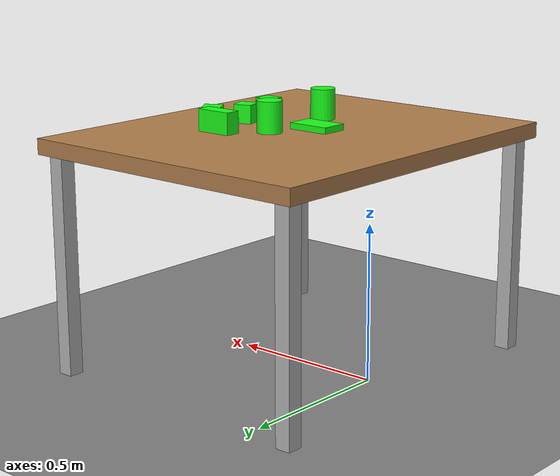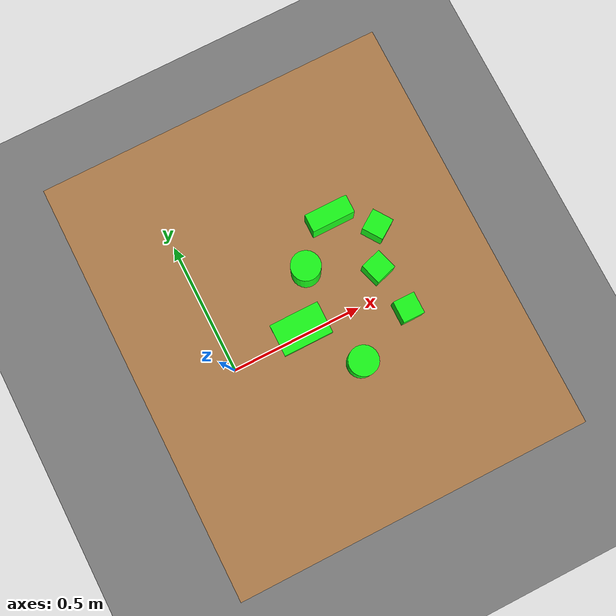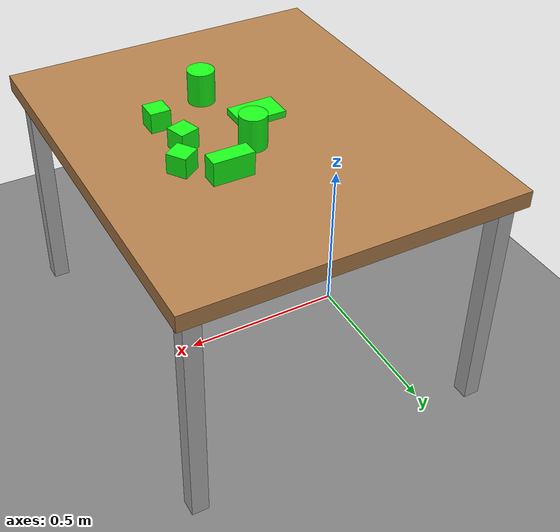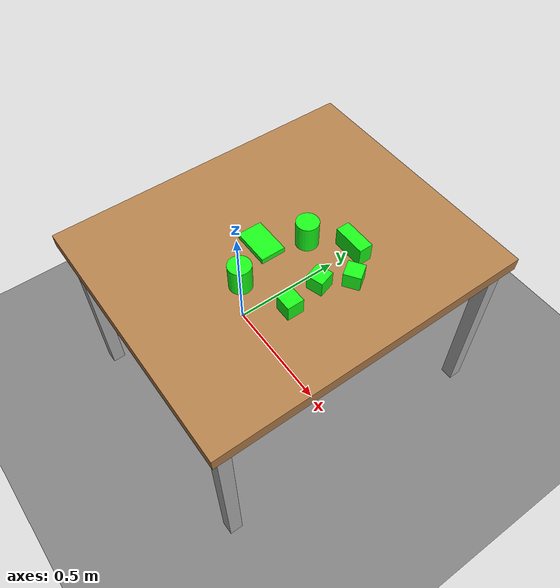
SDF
<?xml version="1.0" ?>
<sdf version="1.6">
  <world name="arm_table_world">

    <model name="ground_plane">
      <static>true</static>
      <link name="link">
        <collision name="collision">
          <geometry><plane><normal>0 0 1</normal><size>20 20</size></plane></geometry>
        </collision>
        <visual name="visual">
          <geometry><plane><normal>0 0 1</normal><size>20 20</size></plane></geometry>
          <material><ambient>0.4 0.4 0.4 1</ambient><diffuse>0.5 0.5 0.5 1</diffuse></material>
        </visual>
      </link>
    </model>

    <!-- Освещение: рассеянный свет сцены (тени светлее), яркое солнце и
         заполняющий источник с другой стороны без теней -->
    <scene>
      <ambient>0.6 0.6 0.6 1</ambient>
      <background>0.75 0.8 0.85 1</background>
      <shadows>true</shadows>
    </scene>

    <light type="directional" name="sun">
      <cast_shadows>true</cast_shadows>
      <pose>0 0 10 0 0 0</pose>
      <diffuse>1.0 1.0 1.0 1</diffuse>
      <specular>0.3 0.3 0.3 1</specular>
      <direction>-0.5 0.1 -0.9</direction>
    </light>

    <light type="directional" name="fill">
      <cast_shadows>false</cast_shadows>
      <pose>0 0 10 0 0 0</pose>
      <diffuse>0.5 0.5 0.5 1</diffuse>
      <specular>0.1 0.1 0.1 1</specular>
      <direction>0.6 -0.3 -0.7</direction>
    </light>

    <!-- Стол: столешница 1.0 x 1.2 x 0.05, центр x=0.3 (край x -0.2..0.8),
         верх z = 0.75; 4 ножки до низа столешницы (z 0.725) -->
    <model name="table">
      <static>true</static>
      <pose>0.3 0 0 0 0 0</pose>
      <link name="link">
        <visual name="top_visual">
          <pose>0 0 0.725 0 0 0</pose>
          <geometry><box><size>1.0 1.2 0.05</size></box></geometry>
          <material><ambient>0.6 0.4 0.2 1</ambient><diffuse>0.7 0.5 0.3 1</diffuse></material>
        </visual>
        <collision name="top_collision">
          <pose>0 0 0.725 0 0 0</pose>
          <geometry><box><size>1.0 1.2 0.05</size></box></geometry>
          <surface><friction><ode><mu>1.0</mu><mu2>1.0</mu2></ode></friction></surface>
        </collision>
        <visual name="leg1"><pose>0.45 0.55 0.35 0 0 0</pose>
          <geometry><box><size>0.05 0.05 0.7</size></box></geometry></visual>
        <visual name="leg2"><pose>0.45 -0.55 0.35 0 0 0</pose>
          <geometry><box><size>0.05 0.05 0.7</size></box></geometry></visual>
        <visual name="leg3"><pose>-0.45 0.55 0.35 0 0 0</pose>
          <geometry><box><size>0.05 0.05 0.7</size></box></geometry></visual>
        <visual name="leg4"><pose>-0.45 -0.55 0.35 0 0 0</pose>
          <geometry><box><size>0.05 0.05 0.7</size></box></geometry></visual>
      </link>
    </model>

    <!-- OBJECTS BEGIN — СГЕНЕРИРОВАНО tools/gen_arm_table_scene.py из config/arm_table_objects.yaml, не править руками -->
    <model name="cube">
      <pose>0.5 0.0 0.7805 0 0 0.3</pose>
      <plugin filename="gz-sim-pose-publisher-system" name="gz::sim::systems::PosePublisher">
        <publish_model_pose>true</publish_model_pose>
        <publish_link_pose>false</publish_link_pose>
        <publish_collision_pose>false</publish_collision_pose>
        <publish_visual_pose>false</publish_visual_pose>
        <publish_sensor_pose>false</publish_sensor_pose>
        <use_pose_vector_msg>true</use_pose_vector_msg>
        <update_frequency>10</update_frequency>
      </plugin>
      <link name="link">
        <inertial>
          <mass>0.1</mass>
          <inertia>
            <ixx>6.000e-05</ixx><iyy>6.000e-05</iyy><izz>6.000e-05</izz>
            <ixy>0</ixy><ixz>0</ixz><iyz>0</iyz>
          </inertia>
        </inertial>
        <visual name="visual">
          <geometry><box><size>0.06 0.06 0.06</size></box></geometry>
          <material><ambient>0.1 1.0 0.1 1</ambient><diffuse>0.1 1.0 0.1 1</diffuse><emissive>0.0 0.35 0.0 1</emissive></material>
        </visual>
        <collision name="collision">
          <geometry><box><size>0.06 0.06 0.06</size></box></geometry>
          <surface><friction><ode><mu>1.0</mu><mu2>1.0</mu2></ode></friction></surface>
        </collision>
      </link>
    </model>
    <model name="parallelepiped">
      <pose>0.45 0.18 0.7855 0 0 0.0</pose>
      <plugin filename="gz-sim-pose-publisher-system" name="gz::sim::systems::PosePublisher">
        <publish_model_pose>true</publish_model_pose>
        <publish_link_pose>false</publish_link_pose>
        <publish_collision_pose>false</publish_collision_pose>
        <publish_visual_pose>false</publish_visual_pose>
        <publish_sensor_pose>false</publish_sensor_pose>
        <use_pose_vector_msg>true</use_pose_vector_msg>
        <update_frequency>10</update_frequency>
      </plugin>
      <link name="link">
        <inertial>
          <mass>0.15</mass>
          <inertia>
            <ixx>9.250e-05</ixx><iyy>2.413e-04</iyy><izz>2.112e-04</izz>
            <ixy>0</ixy><ixz>0</ixz><iyz>0</iyz>
          </inertia>
        </inertial>
        <visual name="visual">
          <geometry><box><size>0.12 0.05 0.07</size></box></geometry>
          <material><ambient>0.1 1.0 0.1 1</ambient><diffuse>0.1 1.0 0.1 1</diffuse><emissive>0.0 0.35 0.0 1</emissive></material>
        </visual>
        <collision name="collision">
          <geometry><box><size>0.12 0.05 0.07</size></box></geometry>
          <surface><friction><ode><mu>1.0</mu><mu2>1.0</mu2></ode></friction></surface>
        </collision>
      </link>
    </model>
    <model name="rect_plate">
      <pose>0.25 -0.05 0.7605 0 0 0.0</pose>
      <plugin filename="gz-sim-pose-publisher-system" name="gz::sim::systems::PosePublisher">
        <publish_model_pose>true</publish_model_pose>
        <publish_link_pose>false</publish_link_pose>
        <publish_collision_pose>false</publish_collision_pose>
        <publish_visual_pose>false</publish_visual_pose>
        <publish_sensor_pose>false</publish_sensor_pose>
        <use_pose_vector_msg>true</use_pose_vector_msg>
        <update_frequency>10</update_frequency>
      </plugin>
      <link name="link">
        <inertial>
          <mass>0.12</mass>
          <inertia>
            <ixx>8.500e-05</ixx><iyy>2.000e-04</iyy><izz>2.770e-04</izz>
            <ixy>0</ixy><ixz>0</ixz><iyz>0</iyz>
          </inertia>
        </inertial>
        <visual name="visual">
          <geometry><box><size>0.14 0.09 0.02</size></box></geometry>
          <material><ambient>0.1 1.0 0.1 1</ambient><diffuse>0.1 1.0 0.1 1</diffuse><emissive>0.0 0.35 0.0 1</emissive></material>
        </visual>
        <collision name="collision">
          <geometry><box><size>0.14 0.09 0.02</size></box></geometry>
          <surface><friction><ode><mu>1.0</mu><mu2>1.0</mu2></ode></friction></surface>
        </collision>
      </link>
    </model>
    <model name="cylinder">
      <pose>0.35 -0.2 0.8005 0 0 0.0</pose>
      <plugin filename="gz-sim-pose-publisher-system" name="gz::sim::systems::PosePublisher">
        <publish_model_pose>true</publish_model_pose>
        <publish_link_pose>false</publish_link_pose>
        <publish_collision_pose>false</publish_collision_pose>
        <publish_visual_pose>false</publish_visual_pose>
        <publish_sensor_pose>false</publish_sensor_pose>
        <use_pose_vector_msg>true</use_pose_vector_msg>
        <update_frequency>10</update_frequency>
      </plugin>
      <link name="link">
        <inertial>
          <mass>0.12</mass>
          <inertia>
            <ixx>1.480e-04</ixx><iyy>1.480e-04</iyy><izz>9.600e-05</izz>
            <ixy>0</ixy><ixz>0</ixz><iyz>0</iyz>
          </inertia>
        </inertial>
        <visual name="visual">
          <geometry><cylinder><radius>0.04</radius><length>0.1</length></cylinder></geometry>
          <material><ambient>0.1 1.0 0.1 1</ambient><diffuse>0.1 1.0 0.1 1</diffuse><emissive>0.0 0.35 0.0 1</emissive></material>
        </visual>
        <collision name="collision">
          <geometry><cylinder><radius>0.04</radius><length>0.1</length></cylinder></geometry>
          <surface><friction><ode><mu>1.0</mu><mu2>1.0</mu2></ode></friction></surface>
        </collision>
      </link>
    </model>
    <model name="cube_2">
      <pose>0.52 -0.13 0.7805 0 0 0.0</pose>
      <plugin filename="gz-sim-pose-publisher-system" name="gz::sim::systems::PosePublisher">
        <publish_model_pose>true</publish_model_pose>
        <publish_link_pose>false</publish_link_pose>
        <publish_collision_pose>false</publish_collision_pose>
        <publish_visual_pose>false</publish_visual_pose>
        <publish_sensor_pose>false</publish_sensor_pose>
        <use_pose_vector_msg>true</use_pose_vector_msg>
        <update_frequency>10</update_frequency>
      </plugin>
      <link name="link">
        <inertial>
          <mass>0.1</mass>
          <inertia>
            <ixx>6.000e-05</ixx><iyy>6.000e-05</iyy><izz>6.000e-05</izz>
            <ixy>0</ixy><ixz>0</ixz><iyz>0</iyz>
          </inertia>
        </inertial>
        <visual name="visual">
          <geometry><box><size>0.06 0.06 0.06</size></box></geometry>
          <material><ambient>0.1 1.0 0.1 1</ambient><diffuse>0.1 1.0 0.1 1</diffuse><emissive>0.0 0.35 0.0 1</emissive></material>
        </visual>
        <collision name="collision">
          <geometry><box><size>0.06 0.06 0.06</size></box></geometry>
          <surface><friction><ode><mu>1.0</mu><mu2>1.0</mu2></ode></friction></surface>
        </collision>
      </link>
    </model>
    <model name="cube_3">
      <pose>0.55 0.1 0.7805 0 0 0.6</pose>
      <plugin filename="gz-sim-pose-publisher-system" name="gz::sim::systems::PosePublisher">
        <publish_model_pose>true</publish_model_pose>
        <publish_link_pose>false</publish_link_pose>
        <publish_collision_pose>false</publish_collision_pose>
        <publish_visual_pose>false</publish_visual_pose>
        <publish_sensor_pose>false</publish_sensor_pose>
        <use_pose_vector_msg>true</use_pose_vector_msg>
        <update_frequency>10</update_frequency>
      </plugin>
      <link name="link">
        <inertial>
          <mass>0.1</mass>
          <inertia>
            <ixx>6.000e-05</ixx><iyy>6.000e-05</iyy><izz>6.000e-05</izz>
            <ixy>0</ixy><ixz>0</ixz><iyz>0</iyz>
          </inertia>
        </inertial>
        <visual name="visual">
          <geometry><box><size>0.06 0.06 0.06</size></box></geometry>
          <material><ambient>0.1 1.0 0.1 1</ambient><diffuse>0.1 1.0 0.1 1</diffuse><emissive>0.0 0.35 0.0 1</emissive></material>
        </visual>
        <collision name="collision">
          <geometry><box><size>0.06 0.06 0.06</size></box></geometry>
          <surface><friction><ode><mu>1.0</mu><mu2>1.0</mu2></ode></friction></surface>
        </collision>
      </link>
    </model>
    <model name="cylinder_2">
      <pose>0.33 0.08 0.8005 0 0 0.0</pose>
      <plugin filename="gz-sim-pose-publisher-system" name="gz::sim::systems::PosePublisher">
        <publish_model_pose>true</publish_model_pose>
        <publish_link_pose>false</publish_link_pose>
        <publish_collision_pose>false</publish_collision_pose>
        <publish_visual_pose>false</publish_visual_pose>
        <publish_sensor_pose>false</publish_sensor_pose>
        <use_pose_vector_msg>true</use_pose_vector_msg>
        <update_frequency>10</update_frequency>
      </plugin>
      <link name="link">
        <inertial>
          <mass>0.12</mass>
          <inertia>
            <ixx>1.480e-04</ixx><iyy>1.480e-04</iyy><izz>9.600e-05</izz>
            <ixy>0</ixy><ixz>0</ixz><iyz>0</iyz>
          </inertia>
        </inertial>
        <visual name="visual">
          <geometry><cylinder><radius>0.04</radius><length>0.1</length></cylinder></geometry>
          <material><ambient>0.1 1.0 0.1 1</ambient><diffuse>0.1 1.0 0.1 1</diffuse><emissive>0.0 0.35 0.0 1</emissive></material>
        </visual>
        <collision name="collision">
          <geometry><cylinder><radius>0.04</radius><length>0.1</length></cylinder></geometry>
          <surface><friction><ode><mu>1.0</mu><mu2>1.0</mu2></ode></friction></surface>
        </collision>
      </link>
    </model>
    <!-- OBJECTS END -->

    <physics name="1ms" type="ode">
      <max_step_size>0.001</max_step_size>
      <real_time_factor>1</real_time_factor>
      <real_time_update_rate>1000</real_time_update_rate>
    </physics>

    <!-- Системные плагины. Sensors — ТОЛЬКО здесь (не в модели): дубликат
         даёт "Scene already exists" и segfault. -->
    <plugin filename="gz-sim-physics-system" name="gz::sim::systems::Physics"/>
    <plugin filename="gz-sim-user-commands-system" name="gz::sim::systems::UserCommands"/>
    <plugin filename="gz-sim-scene-broadcaster-system" name="gz::sim::systems::SceneBroadcaster"/>
    <plugin filename="gz-sim-sensors-system" name="gz::sim::systems::Sensors">
      <render_engine>ogre2</render_engine>
    </plugin>

  </world>
</sdf>
